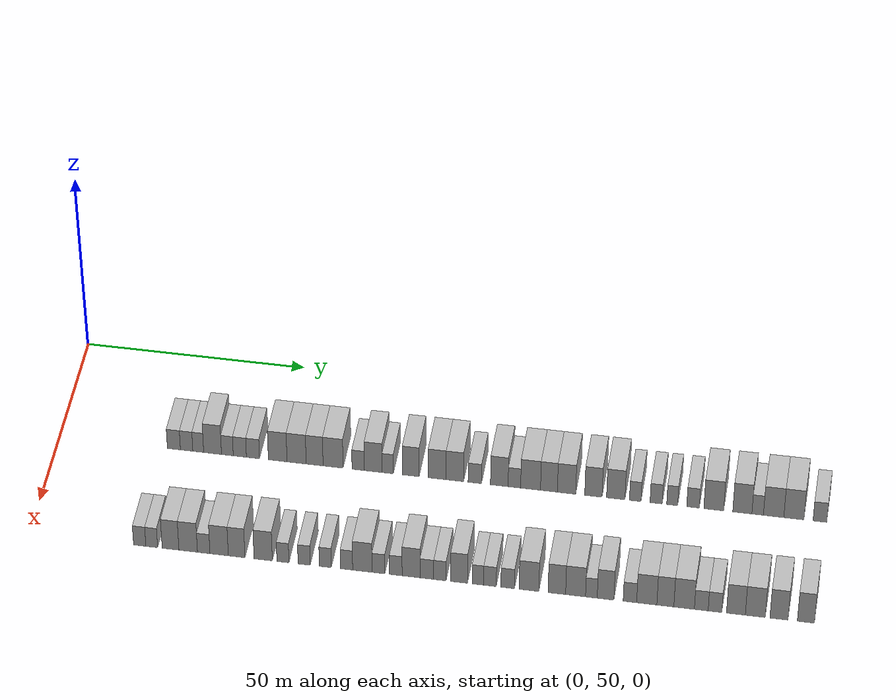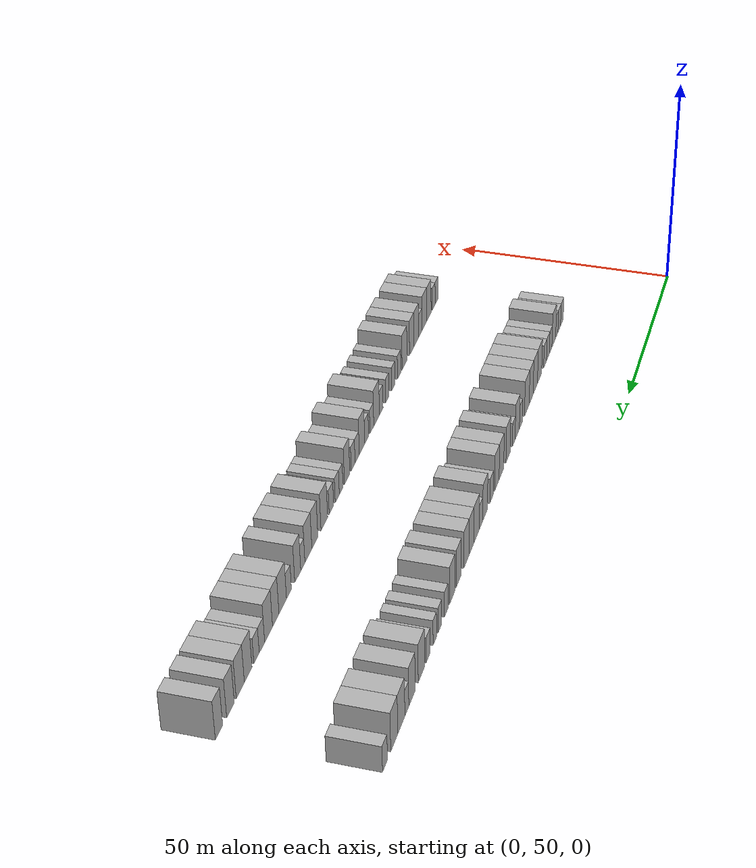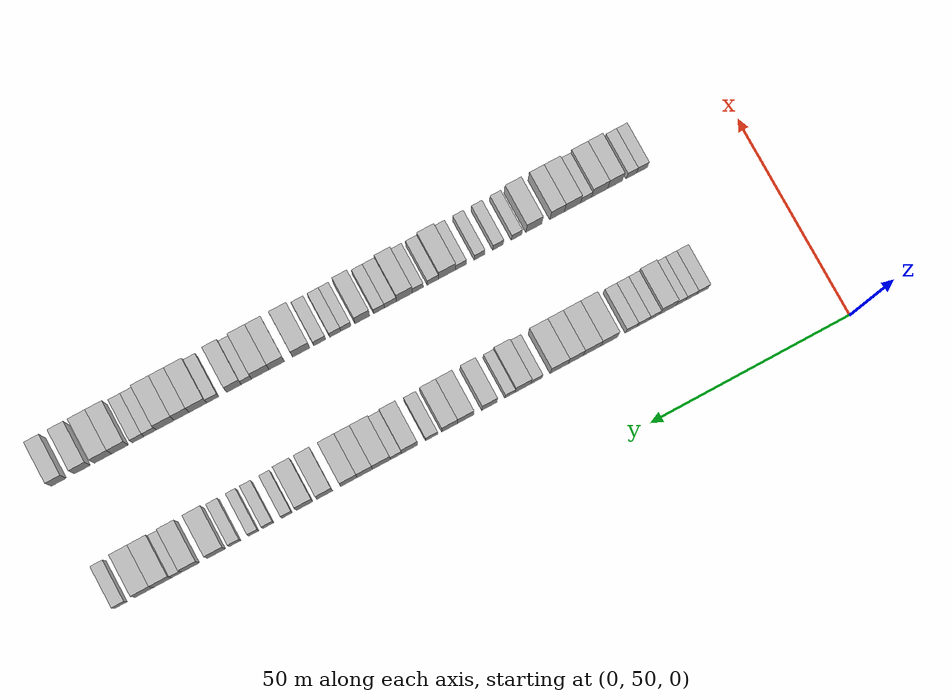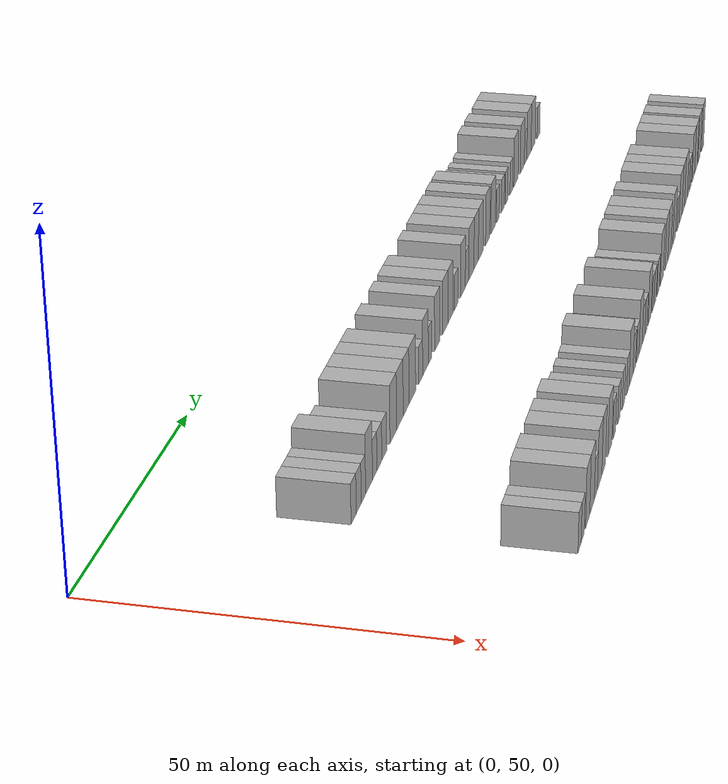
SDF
<sdf version="1.6">
 <world name="default">
  <model name="building_71">
   <static>1</static>
   <pose>25.0000 75.9434 0 0.000000 0.000000 0.000000</pose>
   <link name="link">
    <pose>0 0 3.00 0 0 0</pose>
    <collision name="collision"><geometry><box><size>10.0000 2.9512 6.0000</size></box></geometry></collision>
    <visual name="visual">
     <cast_shadows>0</cast_shadows>
     <geometry><box><size>10.0000 2.9512 6.0000</size></box></geometry>
     <material>
      <script>
       <uri>model://HANNAS_wall/materials/scripts</uri>
       <uri>model://HANNAS_wall/materials/textures</uri>
       <name>vrc/HANNAS_wall</name>
      </script>
     </material>
    </visual>
   </link>
  </model>
  <model name="building_72">
   <static>1</static>
   <pose>25.0000 78.8222 0 0.000000 0.000000 0.000000</pose>
   <link name="link">
    <pose>0 0 3.00 0 0 0</pose>
    <collision name="collision"><geometry><box><size>10.0000 2.8065 6.0000</size></box></geometry></collision>
    <visual name="visual">
     <cast_shadows>0</cast_shadows>
     <geometry><box><size>10.0000 2.8065 6.0000</size></box></geometry>
     <material>
      <script>
       <uri>model://HANNAS_wall/materials/scripts</uri>
       <uri>model://HANNAS_wall/materials/textures</uri>
       <name>vrc/HANNAS_wall</name>
      </script>
     </material>
    </visual>
   </link>
  </model>
  <model name="building_73">
   <static>1</static>
   <pose>25.0000 81.4517 0 0.000000 0.000000 0.000000</pose>
   <link name="link">
    <pose>0 0 3.00 0 0 0</pose>
    <collision name="collision"><geometry><box><size>10.0000 2.4524 6.0000</size></box></geometry></collision>
    <visual name="visual">
     <cast_shadows>0</cast_shadows>
     <geometry><box><size>10.0000 2.4524 6.0000</size></box></geometry>
     <material>
      <script>
       <uri>model://HANNAS_wall/materials/scripts</uri>
       <uri>model://HANNAS_wall/materials/textures</uri>
       <name>vrc/HANNAS_wall</name>
      </script>
     </material>
    </visual>
   </link>
  </model>
  <model name="building_74">
   <static>1</static>
   <pose>25.0000 84.6926 0 0.000000 0.000000 0.000000</pose>
   <link name="link">
    <pose>0 0 4.50 0 0 0</pose>
    <collision name="collision"><geometry><box><size>10.0000 4.0293 9.0000</size></box></geometry></collision>
    <visual name="visual">
     <cast_shadows>0</cast_shadows>
     <geometry><box><size>10.0000 4.0293 9.0000</size></box></geometry>
     <material>
      <script>
       <uri>model://HANNAS_wall/materials/scripts</uri>
       <uri>model://HANNAS_wall/materials/textures</uri>
       <name>vrc/HANNAS_wall</name>
      </script>
     </material>
    </visual>
   </link>
  </model>
  <model name="building_75">
   <static>1</static>
   <pose>25.0000 88.0367 0 0.000000 0.000000 0.000000</pose>
   <link name="link">
    <pose>0 0 3.00 0 0 0</pose>
    <collision name="collision"><geometry><box><size>10.0000 2.6588 6.0000</size></box></geometry></collision>
    <visual name="visual">
     <cast_shadows>0</cast_shadows>
     <geometry><box><size>10.0000 2.6588 6.0000</size></box></geometry>
     <material>
      <script>
       <uri>model://HANNAS_wall/materials/scripts</uri>
       <uri>model://HANNAS_wall/materials/textures</uri>
       <name>vrc/HANNAS_wall</name>
      </script>
     </material>
    </visual>
   </link>
  </model>
  <model name="building_76">
   <static>1</static>
   <pose>25.0000 90.8487 0 0.000000 0.000000 0.000000</pose>
   <link name="link">
    <pose>0 0 3.00 0 0 0</pose>
    <collision name="collision"><geometry><box><size>10.0000 2.9653 6.0000</size></box></geometry></collision>
    <visual name="visual">
     <cast_shadows>0</cast_shadows>
     <geometry><box><size>10.0000 2.9653 6.0000</size></box></geometry>
     <material>
      <script>
       <uri>model://HANNAS_wall/materials/scripts</uri>
       <uri>model://HANNAS_wall/materials/textures</uri>
       <name>vrc/HANNAS_wall</name>
      </script>
     </material>
    </visual>
   </link>
  </model>
  <model name="building_77">
   <static>1</static>
   <pose>25.0000 93.8080 0 0.000000 0.000000 0.000000</pose>
   <link name="link">
    <pose>0 0 3.00 0 0 0</pose>
    <collision name="collision"><geometry><box><size>10.0000 2.9532 6.0000</size></box></geometry></collision>
    <visual name="visual">
     <cast_shadows>0</cast_shadows>
     <geometry><box><size>10.0000 2.9532 6.0000</size></box></geometry>
     <material>
      <script>
       <uri>model://HANNAS_wall/materials/scripts</uri>
       <uri>model://HANNAS_wall/materials/textures</uri>
       <name>vrc/HANNAS_wall</name>
      </script>
     </material>
    </visual>
   </link>
  </model>
  <model name="building_78">
   <static>1</static>
   <pose>25.0000 99.3855 0 0.000000 0.000000 0.000000</pose>
   <link name="link">
    <pose>0 0 4.50 0 0 0</pose>
    <collision name="collision"><geometry><box><size>10.0000 4.2019 9.0000</size></box></geometry></collision>
    <visual name="visual">
     <cast_shadows>0</cast_shadows>
     <geometry><box><size>10.0000 4.2019 9.0000</size></box></geometry>
     <material>
      <script>
       <uri>model://HANNAS_wall/materials/scripts</uri>
       <uri>model://HANNAS_wall/materials/textures</uri>
       <name>vrc/HANNAS_wall</name>
      </script>
     </material>
    </visual>
   </link>
  </model>
  <model name="building_79">
   <static>1</static>
   <pose>25.0000 103.6359 0 0.000000 0.000000 0.000000</pose>
   <link name="link">
    <pose>0 0 4.50 0 0 0</pose>
    <collision name="collision"><geometry><box><size>10.0000 4.2987 9.0000</size></box></geometry></collision>
    <visual name="visual">
     <cast_shadows>0</cast_shadows>
     <geometry><box><size>10.0000 4.2987 9.0000</size></box></geometry>
     <material>
      <script>
       <uri>model://HANNAS_wall/materials/scripts</uri>
       <uri>model://HANNAS_wall/materials/textures</uri>
       <name>vrc/HANNAS_wall</name>
      </script>
     </material>
    </visual>
   </link>
  </model>
  <model name="building_80">
   <static>1</static>
   <pose>25.0000 107.6872 0 0.000000 0.000000 0.000000</pose>
   <link name="link">
    <pose>0 0 4.50 0 0 0</pose>
    <collision name="collision"><geometry><box><size>10.0000 3.8041 9.0000</size></box></geometry></collision>
    <visual name="visual">
     <cast_shadows>0</cast_shadows>
     <geometry><box><size>10.0000 3.8041 9.0000</size></box></geometry>
     <material>
      <script>
       <uri>model://HANNAS_wall/materials/scripts</uri>
       <uri>model://HANNAS_wall/materials/textures</uri>
       <name>vrc/HANNAS_wall</name>
      </script>
     </material>
    </visual>
   </link>
  </model>
  <model name="building_81">
   <static>1</static>
   <pose>25.0000 111.8363 0 0.000000 0.000000 0.000000</pose>
   <link name="link">
    <pose>0 0 4.50 0 0 0</pose>
    <collision name="collision"><geometry><box><size>10.0000 4.4941 9.0000</size></box></geometry></collision>
    <visual name="visual">
     <cast_shadows>0</cast_shadows>
     <geometry><box><size>10.0000 4.4941 9.0000</size></box></geometry>
     <material>
      <script>
       <uri>model://HANNAS_wall/materials/scripts</uri>
       <uri>model://HANNAS_wall/materials/textures</uri>
       <name>vrc/HANNAS_wall</name>
      </script>
     </material>
    </visual>
   </link>
  </model>
  <model name="building_82">
   <static>1</static>
   <pose>25.0000 117.4756 0 0.000000 0.000000 0.000000</pose>
   <link name="link">
    <pose>0 0 3.00 0 0 0</pose>
    <collision name="collision"><geometry><box><size>10.0000 2.7844 6.0000</size></box></geometry></collision>
    <visual name="visual">
     <cast_shadows>0</cast_shadows>
     <geometry><box><size>10.0000 2.7844 6.0000</size></box></geometry>
     <material>
      <script>
       <uri>model://HANNAS_wall/materials/scripts</uri>
       <uri>model://HANNAS_wall/materials/textures</uri>
       <name>vrc/HANNAS_wall</name>
      </script>
     </material>
    </visual>
   </link>
  </model>
  <model name="building_83">
   <static>1</static>
   <pose>25.0000 120.8584 0 0.000000 0.000000 0.000000</pose>
   <link name="link">
    <pose>0 0 4.50 0 0 0</pose>
    <collision name="collision"><geometry><box><size>10.0000 3.9813 9.0000</size></box></geometry></collision>
    <visual name="visual">
     <cast_shadows>0</cast_shadows>
     <geometry><box><size>10.0000 3.9813 9.0000</size></box></geometry>
     <material>
      <script>
       <uri>model://HANNAS_wall/materials/scripts</uri>
       <uri>model://HANNAS_wall/materials/textures</uri>
       <name>vrc/HANNAS_wall</name>
      </script>
     </material>
    </visual>
   </link>
  </model>
  <model name="building_84">
   <static>1</static>
   <pose>25.0000 124.0982 0 0.000000 0.000000 0.000000</pose>
   <link name="link">
    <pose>0 0 3.00 0 0 0</pose>
    <collision name="collision"><geometry><box><size>10.0000 2.4984 6.0000</size></box></geometry></collision>
    <visual name="visual">
     <cast_shadows>0</cast_shadows>
     <geometry><box><size>10.0000 2.4984 6.0000</size></box></geometry>
     <material>
      <script>
       <uri>model://HANNAS_wall/materials/scripts</uri>
       <uri>model://HANNAS_wall/materials/textures</uri>
       <name>vrc/HANNAS_wall</name>
      </script>
     </material>
    </visual>
   </link>
  </model>
  <model name="building_85">
   <static>1</static>
   <pose>25.0000 129.2277 0 0.000000 0.000000 0.000000</pose>
   <link name="link">
    <pose>0 0 4.50 0 0 0</pose>
    <collision name="collision"><geometry><box><size>10.0000 3.7606 9.0000</size></box></geometry></collision>
    <visual name="visual">
     <cast_shadows>0</cast_shadows>
     <geometry><box><size>10.0000 3.7606 9.0000</size></box></geometry>
     <material>
      <script>
       <uri>model://HANNAS_wall/materials/scripts</uri>
       <uri>model://HANNAS_wall/materials/textures</uri>
       <name>vrc/HANNAS_wall</name>
      </script>
     </material>
    </visual>
   </link>
  </model>
  <model name="building_86">
   <static>1</static>
   <pose>25.0000 135.1202 0 0.000000 0.000000 0.000000</pose>
   <link name="link">
    <pose>0 0 4.50 0 0 0</pose>
    <collision name="collision"><geometry><box><size>10.0000 4.0243 9.0000</size></box></geometry></collision>
    <visual name="visual">
     <cast_shadows>0</cast_shadows>
     <geometry><box><size>10.0000 4.0243 9.0000</size></box></geometry>
     <material>
      <script>
       <uri>model://HANNAS_wall/materials/scripts</uri>
       <uri>model://HANNAS_wall/materials/textures</uri>
       <name>vrc/HANNAS_wall</name>
      </script>
     </material>
    </visual>
   </link>
  </model>
  <model name="building_87">
   <static>1</static>
   <pose>25.0000 139.0828 0 0.000000 0.000000 0.000000</pose>
   <link name="link">
    <pose>0 0 4.50 0 0 0</pose>
    <collision name="collision"><geometry><box><size>10.0000 3.9010 9.0000</size></box></geometry></collision>
    <visual name="visual">
     <cast_shadows>0</cast_shadows>
     <geometry><box><size>10.0000 3.9010 9.0000</size></box></geometry>
     <material>
      <script>
       <uri>model://HANNAS_wall/materials/scripts</uri>
       <uri>model://HANNAS_wall/materials/textures</uri>
       <name>vrc/HANNAS_wall</name>
      </script>
     </material>
    </visual>
   </link>
  </model>
  <model name="building_88">
   <static>1</static>
   <pose>25.0000 143.5265 0 0.000000 0.000000 0.000000</pose>
   <link name="link">
    <pose>0 0 3.00 0 0 0</pose>
    <collision name="collision"><geometry><box><size>10.0000 2.9864 6.0000</size></box></geometry></collision>
    <visual name="visual">
     <cast_shadows>0</cast_shadows>
     <geometry><box><size>10.0000 2.9864 6.0000</size></box></geometry>
     <material>
      <script>
       <uri>model://HANNAS_wall/materials/scripts</uri>
       <uri>model://HANNAS_wall/materials/textures</uri>
       <name>vrc/HANNAS_wall</name>
      </script>
     </material>
    </visual>
   </link>
  </model>
  <model name="building_89">
   <static>1</static>
   <pose>25.0000 148.9827 0 0.000000 0.000000 0.000000</pose>
   <link name="link">
    <pose>0 0 4.50 0 0 0</pose>
    <collision name="collision"><geometry><box><size>10.0000 3.9260 9.0000</size></box></geometry></collision>
    <visual name="visual">
     <cast_shadows>0</cast_shadows>
     <geometry><box><size>10.0000 3.9260 9.0000</size></box></geometry>
     <material>
      <script>
       <uri>model://HANNAS_wall/materials/scripts</uri>
       <uri>model://HANNAS_wall/materials/textures</uri>
       <name>vrc/HANNAS_wall</name>
      </script>
     </material>
    </visual>
   </link>
  </model>
  <model name="building_90">
   <static>1</static>
   <pose>25.0000 152.3380 0 0.000000 0.000000 0.000000</pose>
   <link name="link">
    <pose>0 0 3.00 0 0 0</pose>
    <collision name="collision"><geometry><box><size>10.0000 2.7845 6.0000</size></box></geometry></collision>
    <visual name="visual">
     <cast_shadows>0</cast_shadows>
     <geometry><box><size>10.0000 2.7845 6.0000</size></box></geometry>
     <material>
      <script>
       <uri>model://HANNAS_wall/materials/scripts</uri>
       <uri>model://HANNAS_wall/materials/textures</uri>
       <name>vrc/HANNAS_wall</name>
      </script>
     </material>
    </visual>
   </link>
  </model>
  <model name="building_91">
   <static>1</static>
   <pose>25.0000 155.9363 0 0.000000 0.000000 0.000000</pose>
   <link name="link">
    <pose>0 0 4.50 0 0 0</pose>
    <collision name="collision"><geometry><box><size>10.0000 4.4121 9.0000</size></box></geometry></collision>
    <visual name="visual">
     <cast_shadows>0</cast_shadows>
     <geometry><box><size>10.0000 4.4121 9.0000</size></box></geometry>
     <material>
      <script>
       <uri>model://HANNAS_wall/materials/scripts</uri>
       <uri>model://HANNAS_wall/materials/textures</uri>
       <name>vrc/HANNAS_wall</name>
      </script>
     </material>
    </visual>
   </link>
  </model>
  <model name="building_92">
   <static>1</static>
   <pose>25.0000 160.0136 0 0.000000 0.000000 0.000000</pose>
   <link name="link">
    <pose>0 0 4.50 0 0 0</pose>
    <collision name="collision"><geometry><box><size>10.0000 3.7425 9.0000</size></box></geometry></collision>
    <visual name="visual">
     <cast_shadows>0</cast_shadows>
     <geometry><box><size>10.0000 3.7425 9.0000</size></box></geometry>
     <material>
      <script>
       <uri>model://HANNAS_wall/materials/scripts</uri>
       <uri>model://HANNAS_wall/materials/textures</uri>
       <name>vrc/HANNAS_wall</name>
      </script>
     </material>
    </visual>
   </link>
  </model>
  <model name="building_93">
   <static>1</static>
   <pose>25.0000 163.9156 0 0.000000 0.000000 0.000000</pose>
   <link name="link">
    <pose>0 0 4.50 0 0 0</pose>
    <collision name="collision"><geometry><box><size>10.0000 4.0614 9.0000</size></box></geometry></collision>
    <visual name="visual">
     <cast_shadows>0</cast_shadows>
     <geometry><box><size>10.0000 4.0614 9.0000</size></box></geometry>
     <material>
      <script>
       <uri>model://HANNAS_wall/materials/scripts</uri>
       <uri>model://HANNAS_wall/materials/textures</uri>
       <name>vrc/HANNAS_wall</name>
      </script>
     </material>
    </visual>
   </link>
  </model>
  <model name="building_94">
   <static>1</static>
   <pose>25.0000 169.8622 0 0.000000 0.000000 0.000000</pose>
   <link name="link">
    <pose>0 0 4.50 0 0 0</pose>
    <collision name="collision"><geometry><box><size>10.0000 3.8318 9.0000</size></box></geometry></collision>
    <visual name="visual">
     <cast_shadows>0</cast_shadows>
     <geometry><box><size>10.0000 3.8318 9.0000</size></box></geometry>
     <material>
      <script>
       <uri>model://HANNAS_wall/materials/scripts</uri>
       <uri>model://HANNAS_wall/materials/textures</uri>
       <name>vrc/HANNAS_wall</name>
      </script>
     </material>
    </visual>
   </link>
  </model>
  <model name="building_95">
   <static>1</static>
   <pose>25.0000 174.8088 0 0.000000 0.000000 0.000000</pose>
   <link name="link">
    <pose>0 0 4.50 0 0 0</pose>
    <collision name="collision"><geometry><box><size>10.0000 4.0614 9.0000</size></box></geometry></collision>
    <visual name="visual">
     <cast_shadows>0</cast_shadows>
     <geometry><box><size>10.0000 4.0614 9.0000</size></box></geometry>
     <material>
      <script>
       <uri>model://HANNAS_wall/materials/scripts</uri>
       <uri>model://HANNAS_wall/materials/textures</uri>
       <name>vrc/HANNAS_wall</name>
      </script>
     </material>
    </visual>
   </link>
  </model>
  <model name="building_96">
   <static>1</static>
   <pose>25.0000 179.1138 0 0.000000 0.000000 0.000000</pose>
   <link name="link">
    <pose>0 0 3.00 0 0 0</pose>
    <collision name="collision"><geometry><box><size>10.0000 2.5486 6.0000</size></box></geometry></collision>
    <visual name="visual">
     <cast_shadows>0</cast_shadows>
     <geometry><box><size>10.0000 2.5486 6.0000</size></box></geometry>
     <material>
      <script>
       <uri>model://HANNAS_wall/materials/scripts</uri>
       <uri>model://HANNAS_wall/materials/textures</uri>
       <name>vrc/HANNAS_wall</name>
      </script>
     </material>
    </visual>
   </link>
  </model>
  <model name="building_97">
   <static>1</static>
   <pose>25.0000 183.7272 0 0.000000 0.000000 0.000000</pose>
   <link name="link">
    <pose>0 0 3.00 0 0 0</pose>
    <collision name="collision"><geometry><box><size>10.0000 2.6782 6.0000</size></box></geometry></collision>
    <visual name="visual">
     <cast_shadows>0</cast_shadows>
     <geometry><box><size>10.0000 2.6782 6.0000</size></box></geometry>
     <material>
      <script>
       <uri>model://HANNAS_wall/materials/scripts</uri>
       <uri>model://HANNAS_wall/materials/textures</uri>
       <name>vrc/HANNAS_wall</name>
      </script>
     </material>
    </visual>
   </link>
  </model>
  <model name="building_98">
   <static>1</static>
   <pose>25.0000 187.2731 0 0.000000 0.000000 0.000000</pose>
   <link name="link">
    <pose>0 0 3.00 0 0 0</pose>
    <collision name="collision"><geometry><box><size>10.0000 2.4135 6.0000</size></box></geometry></collision>
    <visual name="visual">
     <cast_shadows>0</cast_shadows>
     <geometry><box><size>10.0000 2.4135 6.0000</size></box></geometry>
     <material>
      <script>
       <uri>model://HANNAS_wall/materials/scripts</uri>
       <uri>model://HANNAS_wall/materials/textures</uri>
       <name>vrc/HANNAS_wall</name>
      </script>
     </material>
    </visual>
   </link>
  </model>
  <model name="building_99">
   <static>1</static>
   <pose>25.0000 191.8620 0 0.000000 0.000000 0.000000</pose>
   <link name="link">
    <pose>0 0 3.00 0 0 0</pose>
    <collision name="collision"><geometry><box><size>10.0000 2.7644 6.0000</size></box></geometry></collision>
    <visual name="visual">
     <cast_shadows>0</cast_shadows>
     <geometry><box><size>10.0000 2.7644 6.0000</size></box></geometry>
     <material>
      <script>
       <uri>model://HANNAS_wall/materials/scripts</uri>
       <uri>model://HANNAS_wall/materials/textures</uri>
       <name>vrc/HANNAS_wall</name>
      </script>
     </material>
    </visual>
   </link>
  </model>
  <model name="building_100">
   <static>1</static>
   <pose>25.0000 196.4254 0 0.000000 0.000000 0.000000</pose>
   <link name="link">
    <pose>0 0 4.50 0 0 0</pose>
    <collision name="collision"><geometry><box><size>10.0000 4.3623 9.0000</size></box></geometry></collision>
    <visual name="visual">
     <cast_shadows>0</cast_shadows>
     <geometry><box><size>10.0000 4.3623 9.0000</size></box></geometry>
     <material>
      <script>
       <uri>model://HANNAS_wall/materials/scripts</uri>
       <uri>model://HANNAS_wall/materials/textures</uri>
       <name>vrc/HANNAS_wall</name>
      </script>
     </material>
    </visual>
   </link>
  </model>
  <model name="building_101">
   <static>1</static>
   <pose>25.0000 202.7082 0 0.000000 0.000000 0.000000</pose>
   <link name="link">
    <pose>0 0 4.50 0 0 0</pose>
    <collision name="collision"><geometry><box><size>10.0000 4.2033 9.0000</size></box></geometry></collision>
    <visual name="visual">
     <cast_shadows>0</cast_shadows>
     <geometry><box><size>10.0000 4.2033 9.0000</size></box></geometry>
     <material>
      <script>
       <uri>model://HANNAS_wall/materials/scripts</uri>
       <uri>model://HANNAS_wall/materials/textures</uri>
       <name>vrc/HANNAS_wall</name>
      </script>
     </material>
    </visual>
   </link>
  </model>
  <model name="building_102">
   <static>1</static>
   <pose>25.0000 206.0716 0 0.000000 0.000000 0.000000</pose>
   <link name="link">
    <pose>0 0 3.00 0 0 0</pose>
    <collision name="collision"><geometry><box><size>10.0000 2.5236 6.0000</size></box></geometry></collision>
    <visual name="visual">
     <cast_shadows>0</cast_shadows>
     <geometry><box><size>10.0000 2.5236 6.0000</size></box></geometry>
     <material>
      <script>
       <uri>model://HANNAS_wall/materials/scripts</uri>
       <uri>model://HANNAS_wall/materials/textures</uri>
       <name>vrc/HANNAS_wall</name>
      </script>
     </material>
    </visual>
   </link>
  </model>
  <model name="building_103">
   <static>1</static>
   <pose>25.0000 209.5708 0 0.000000 0.000000 0.000000</pose>
   <link name="link">
    <pose>0 0 4.50 0 0 0</pose>
    <collision name="collision"><geometry><box><size>10.0000 4.4748 9.0000</size></box></geometry></collision>
    <visual name="visual">
     <cast_shadows>0</cast_shadows>
     <geometry><box><size>10.0000 4.4748 9.0000</size></box></geometry>
     <material>
      <script>
       <uri>model://HANNAS_wall/materials/scripts</uri>
       <uri>model://HANNAS_wall/materials/textures</uri>
       <name>vrc/HANNAS_wall</name>
      </script>
     </material>
    </visual>
   </link>
  </model>
  <model name="building_104">
   <static>1</static>
   <pose>25.0000 214.0090 0 0.000000 0.000000 0.000000</pose>
   <link name="link">
    <pose>0 0 4.50 0 0 0</pose>
    <collision name="collision"><geometry><box><size>10.0000 4.4015 9.0000</size></box></geometry></collision>
    <visual name="visual">
     <cast_shadows>0</cast_shadows>
     <geometry><box><size>10.0000 4.4015 9.0000</size></box></geometry>
     <material>
      <script>
       <uri>model://HANNAS_wall/materials/scripts</uri>
       <uri>model://HANNAS_wall/materials/textures</uri>
       <name>vrc/HANNAS_wall</name>
      </script>
     </material>
    </visual>
   </link>
  </model>
  <model name="building_105">
   <static>1</static>
   <pose>25.0000 219.7076 0 0.000000 0.000000 0.000000</pose>
   <link name="link">
    <pose>0 0 3.00 0 0 0</pose>
    <collision name="collision"><geometry><box><size>10.0000 2.9957 6.0000</size></box></geometry></collision>
    <visual name="visual">
     <cast_shadows>0</cast_shadows>
     <geometry><box><size>10.0000 2.9957 6.0000</size></box></geometry>
     <material>
      <script>
       <uri>model://HANNAS_wall/materials/scripts</uri>
       <uri>model://HANNAS_wall/materials/textures</uri>
       <name>vrc/HANNAS_wall</name>
      </script>
     </material>
    </visual>
   </link>
  </model>
  <model name="building_178">
   <static>1</static>
   <pose>55.0000 74.4516 0 0.000000 0.000000 0.000000</pose>
   <link name="link">
    <pose>0 0 3.00 0 0 0</pose>
    <collision name="collision"><geometry><box><size>10.0000 2.7142 6.0000</size></box></geometry></collision>
    <visual name="visual">
     <cast_shadows>0</cast_shadows>
     <geometry><box><size>10.0000 2.7142 6.0000</size></box></geometry>
     <material>
      <script>
       <uri>model://HANNAS_wall/materials/scripts</uri>
       <uri>model://HANNAS_wall/materials/textures</uri>
       <name>vrc/HANNAS_wall</name>
      </script>
     </material>
    </visual>
   </link>
  </model>
  <model name="building_179">
   <static>1</static>
   <pose>55.0000 77.1133 0 0.000000 0.000000 0.000000</pose>
   <link name="link">
    <pose>0 0 3.00 0 0 0</pose>
    <collision name="collision"><geometry><box><size>10.0000 2.6094 6.0000</size></box></geometry></collision>
    <visual name="visual">
     <cast_shadows>0</cast_shadows>
     <geometry><box><size>10.0000 2.6094 6.0000</size></box></geometry>
     <material>
      <script>
       <uri>model://HANNAS_wall/materials/scripts</uri>
       <uri>model://HANNAS_wall/materials/textures</uri>
       <name>vrc/HANNAS_wall</name>
      </script>
     </material>
    </visual>
   </link>
  </model>
  <model name="building_180">
   <static>1</static>
   <pose>55.0000 81.2710 0 0.000000 0.000000 0.000000</pose>
   <link name="link">
    <pose>0 0 4.50 0 0 0</pose>
    <collision name="collision"><geometry><box><size>10.0000 3.7060 9.0000</size></box></geometry></collision>
    <visual name="visual">
     <cast_shadows>0</cast_shadows>
     <geometry><box><size>10.0000 3.7060 9.0000</size></box></geometry>
     <material>
      <script>
       <uri>model://HANNAS_wall/materials/scripts</uri>
       <uri>model://HANNAS_wall/materials/textures</uri>
       <name>vrc/HANNAS_wall</name>
      </script>
     </material>
    </visual>
   </link>
  </model>
  <model name="building_181">
   <static>1</static>
   <pose>55.0000 85.1702 0 0.000000 0.000000 0.000000</pose>
   <link name="link">
    <pose>0 0 4.50 0 0 0</pose>
    <collision name="collision"><geometry><box><size>10.0000 4.0924 9.0000</size></box></geometry></collision>
    <visual name="visual">
     <cast_shadows>0</cast_shadows>
     <geometry><box><size>10.0000 4.0924 9.0000</size></box></geometry>
     <material>
      <script>
       <uri>model://HANNAS_wall/materials/scripts</uri>
       <uri>model://HANNAS_wall/materials/textures</uri>
       <name>vrc/HANNAS_wall</name>
      </script>
     </material>
    </visual>
   </link>
  </model>
  <model name="building_182">
   <static>1</static>
   <pose>55.0000 88.5959 0 0.000000 0.000000 0.000000</pose>
   <link name="link">
    <pose>0 0 3.00 0 0 0</pose>
    <collision name="collision"><geometry><box><size>10.0000 2.7591 6.0000</size></box></geometry></collision>
    <visual name="visual">
     <cast_shadows>0</cast_shadows>
     <geometry><box><size>10.0000 2.7591 6.0000</size></box></geometry>
     <material>
      <script>
       <uri>model://HANNAS_wall/materials/scripts</uri>
       <uri>model://HANNAS_wall/materials/textures</uri>
       <name>vrc/HANNAS_wall</name>
      </script>
     </material>
    </visual>
   </link>
  </model>
  <model name="building_183">
   <static>1</static>
   <pose>55.0000 92.0030 0 0.000000 0.000000 0.000000</pose>
   <link name="link">
    <pose>0 0 4.50 0 0 0</pose>
    <collision name="collision"><geometry><box><size>10.0000 4.0550 9.0000</size></box></geometry></collision>
    <visual name="visual">
     <cast_shadows>0</cast_shadows>
     <geometry><box><size>10.0000 4.0550 9.0000</size></box></geometry>
     <material>
      <script>
       <uri>model://HANNAS_wall/materials/scripts</uri>
       <uri>model://HANNAS_wall/materials/textures</uri>
       <name>vrc/HANNAS_wall</name>
      </script>
     </material>
    </visual>
   </link>
  </model>
  <model name="building_184">
   <static>1</static>
   <pose>55.0000 95.8622 0 0.000000 0.000000 0.000000</pose>
   <link name="link">
    <pose>0 0 4.50 0 0 0</pose>
    <collision name="collision"><geometry><box><size>10.0000 3.6633 9.0000</size></box></geometry></collision>
    <visual name="visual">
     <cast_shadows>0</cast_shadows>
     <geometry><box><size>10.0000 3.6633 9.0000</size></box></geometry>
     <material>
      <script>
       <uri>model://HANNAS_wall/materials/scripts</uri>
       <uri>model://HANNAS_wall/materials/textures</uri>
       <name>vrc/HANNAS_wall</name>
      </script>
     </material>
    </visual>
   </link>
  </model>
  <model name="building_185">
   <static>1</static>
   <pose>55.0000 101.7070 0 0.000000 0.000000 0.000000</pose>
   <link name="link">
    <pose>0 0 4.50 0 0 0</pose>
    <collision name="collision"><geometry><box><size>10.0000 4.0263 9.0000</size></box></geometry></collision>
    <visual name="visual">
     <cast_shadows>0</cast_shadows>
     <geometry><box><size>10.0000 4.0263 9.0000</size></box></geometry>
     <material>
      <script>
       <uri>model://HANNAS_wall/materials/scripts</uri>
       <uri>model://HANNAS_wall/materials/textures</uri>
       <name>vrc/HANNAS_wall</name>
      </script>
     </material>
    </visual>
   </link>
  </model>
  <model name="building_186">
   <static>1</static>
   <pose>55.0000 106.0447 0 0.000000 0.000000 0.000000</pose>
   <link name="link">
    <pose>0 0 3.00 0 0 0</pose>
    <collision name="collision"><geometry><box><size>10.0000 2.6491 6.0000</size></box></geometry></collision>
    <visual name="visual">
     <cast_shadows>0</cast_shadows>
     <geometry><box><size>10.0000 2.6491 6.0000</size></box></geometry>
     <material>
      <script>
       <uri>model://HANNAS_wall/materials/scripts</uri>
       <uri>model://HANNAS_wall/materials/textures</uri>
       <name>vrc/HANNAS_wall</name>
      </script>
     </material>
    </visual>
   </link>
  </model>
  <model name="building_187">
   <static>1</static>
   <pose>55.0000 110.7025 0 0.000000 0.000000 0.000000</pose>
   <link name="link">
    <pose>0 0 3.00 0 0 0</pose>
    <collision name="collision"><geometry><box><size>10.0000 2.6667 6.0000</size></box></geometry></collision>
    <visual name="visual">
     <cast_shadows>0</cast_shadows>
     <geometry><box><size>10.0000 2.6667 6.0000</size></box></geometry>
     <material>
      <script>
       <uri>model://HANNAS_wall/materials/scripts</uri>
       <uri>model://HANNAS_wall/materials/textures</uri>
       <name>vrc/HANNAS_wall</name>
      </script>
     </material>
    </visual>
   </link>
  </model>
  <model name="building_188">
   <static>1</static>
   <pose>55.0000 115.3500 0 0.000000 0.000000 0.000000</pose>
   <link name="link">
    <pose>0 0 3.00 0 0 0</pose>
    <collision name="collision"><geometry><box><size>10.0000 2.6282 6.0000</size></box></geometry></collision>
    <visual name="visual">
     <cast_shadows>0</cast_shadows>
     <geometry><box><size>10.0000 2.6282 6.0000</size></box></geometry>
     <material>
      <script>
       <uri>model://HANNAS_wall/materials/scripts</uri>
       <uri>model://HANNAS_wall/materials/textures</uri>
       <name>vrc/HANNAS_wall</name>
      </script>
     </material>
    </visual>
   </link>
  </model>
  <model name="building_189">
   <static>1</static>
   <pose>55.0000 120.0042 0 0.000000 0.000000 0.000000</pose>
   <link name="link">
    <pose>0 0 3.00 0 0 0</pose>
    <collision name="collision"><geometry><box><size>10.0000 2.6802 6.0000</size></box></geometry></collision>
    <visual name="visual">
     <cast_shadows>0</cast_shadows>
     <geometry><box><size>10.0000 2.6802 6.0000</size></box></geometry>
     <material>
      <script>
       <uri>model://HANNAS_wall/materials/scripts</uri>
       <uri>model://HANNAS_wall/materials/textures</uri>
       <name>vrc/HANNAS_wall</name>
      </script>
     </material>
    </visual>
   </link>
  </model>
  <model name="building_190">
   <static>1</static>
   <pose>55.0000 123.4633 0 0.000000 0.000000 0.000000</pose>
   <link name="link">
    <pose>0 0 4.50 0 0 0</pose>
    <collision name="collision"><geometry><box><size>10.0000 4.2381 9.0000</size></box></geometry></collision>
    <visual name="visual">
     <cast_shadows>0</cast_shadows>
     <geometry><box><size>10.0000 4.2381 9.0000</size></box></geometry>
     <material>
      <script>
       <uri>model://HANNAS_wall/materials/scripts</uri>
       <uri>model://HANNAS_wall/materials/textures</uri>
       <name>vrc/HANNAS_wall</name>
      </script>
     </material>
    </visual>
   </link>
  </model>
  <model name="building_191">
   <static>1</static>
   <pose>55.0000 126.9871 0 0.000000 0.000000 0.000000</pose>
   <link name="link">
    <pose>0 0 3.00 0 0 0</pose>
    <collision name="collision"><geometry><box><size>10.0000 2.8095 6.0000</size></box></geometry></collision>
    <visual name="visual">
     <cast_shadows>0</cast_shadows>
     <geometry><box><size>10.0000 2.8095 6.0000</size></box></geometry>
     <material>
      <script>
       <uri>model://HANNAS_wall/materials/scripts</uri>
       <uri>model://HANNAS_wall/materials/textures</uri>
       <name>vrc/HANNAS_wall</name>
      </script>
     </material>
    </visual>
   </link>
  </model>
  <model name="building_192">
   <static>1</static>
   <pose>55.0000 130.7754 0 0.000000 0.000000 0.000000</pose>
   <link name="link">
    <pose>0 0 3.00 0 0 0</pose>
    <collision name="collision"><geometry><box><size>10.0000 2.7670 6.0000</size></box></geometry></collision>
    <visual name="visual">
     <cast_shadows>0</cast_shadows>
     <geometry><box><size>10.0000 2.7670 6.0000</size></box></geometry>
     <material>
      <script>
       <uri>model://HANNAS_wall/materials/scripts</uri>
       <uri>model://HANNAS_wall/materials/textures</uri>
       <name>vrc/HANNAS_wall</name>
      </script>
     </material>
    </visual>
   </link>
  </model>
  <model name="building_193">
   <static>1</static>
   <pose>55.0000 134.1087 0 0.000000 0.000000 0.000000</pose>
   <link name="link">
    <pose>0 0 4.50 0 0 0</pose>
    <collision name="collision"><geometry><box><size>10.0000 3.8997 9.0000</size></box></geometry></collision>
    <visual name="visual">
     <cast_shadows>0</cast_shadows>
     <geometry><box><size>10.0000 3.8997 9.0000</size></box></geometry>
     <material>
      <script>
       <uri>model://HANNAS_wall/materials/scripts</uri>
       <uri>model://HANNAS_wall/materials/textures</uri>
       <name>vrc/HANNAS_wall</name>
      </script>
     </material>
    </visual>
   </link>
  </model>
  <model name="building_194">
   <static>1</static>
   <pose>55.0000 137.5579 0 0.000000 0.000000 0.000000</pose>
   <link name="link">
    <pose>0 0 3.00 0 0 0</pose>
    <collision name="collision"><geometry><box><size>10.0000 2.9987 6.0000</size></box></geometry></collision>
    <visual name="visual">
     <cast_shadows>0</cast_shadows>
     <geometry><box><size>10.0000 2.9987 6.0000</size></box></geometry>
     <material>
      <script>
       <uri>model://HANNAS_wall/materials/scripts</uri>
       <uri>model://HANNAS_wall/materials/textures</uri>
       <name>vrc/HANNAS_wall</name>
      </script>
     </material>
    </visual>
   </link>
  </model>
  <model name="building_195">
   <static>1</static>
   <pose>55.0000 140.4032 0 0.000000 0.000000 0.000000</pose>
   <link name="link">
    <pose>0 0 3.00 0 0 0</pose>
    <collision name="collision"><geometry><box><size>10.0000 2.6919 6.0000</size></box></geometry></collision>
    <visual name="visual">
     <cast_shadows>0</cast_shadows>
     <geometry><box><size>10.0000 2.6919 6.0000</size></box></geometry>
     <material>
      <script>
       <uri>model://HANNAS_wall/materials/scripts</uri>
       <uri>model://HANNAS_wall/materials/textures</uri>
       <name>vrc/HANNAS_wall</name>
      </script>
     </material>
    </visual>
   </link>
  </model>
  <model name="building_196">
   <static>1</static>
   <pose>55.0000 144.5765 0 0.000000 0.000000 0.000000</pose>
   <link name="link">
    <pose>0 0 4.50 0 0 0</pose>
    <collision name="collision"><geometry><box><size>10.0000 3.6547 9.0000</size></box></geometry></collision>
    <visual name="visual">
     <cast_shadows>0</cast_shadows>
     <geometry><box><size>10.0000 3.6547 9.0000</size></box></geometry>
     <material>
      <script>
       <uri>model://HANNAS_wall/materials/scripts</uri>
       <uri>model://HANNAS_wall/materials/textures</uri>
       <name>vrc/HANNAS_wall</name>
      </script>
     </material>
    </visual>
   </link>
  </model>
  <model name="building_197">
   <static>1</static>
   <pose>55.0000 148.6524 0 0.000000 0.000000 0.000000</pose>
   <link name="link">
    <pose>0 0 3.00 0 0 0</pose>
    <collision name="collision"><geometry><box><size>10.0000 2.4972 6.0000</size></box></geometry></collision>
    <visual name="visual">
     <cast_shadows>0</cast_shadows>
     <geometry><box><size>10.0000 2.4972 6.0000</size></box></geometry>
     <material>
      <script>
       <uri>model://HANNAS_wall/materials/scripts</uri>
       <uri>model://HANNAS_wall/materials/textures</uri>
       <name>vrc/HANNAS_wall</name>
      </script>
     </material>
    </visual>
   </link>
  </model>
  <model name="building_198">
   <static>1</static>
   <pose>55.0000 151.2826 0 0.000000 0.000000 0.000000</pose>
   <link name="link">
    <pose>0 0 3.00 0 0 0</pose>
    <collision name="collision"><geometry><box><size>10.0000 2.7633 6.0000</size></box></geometry></collision>
    <visual name="visual">
     <cast_shadows>0</cast_shadows>
     <geometry><box><size>10.0000 2.7633 6.0000</size></box></geometry>
     <material>
      <script>
       <uri>model://HANNAS_wall/materials/scripts</uri>
       <uri>model://HANNAS_wall/materials/textures</uri>
       <name>vrc/HANNAS_wall</name>
      </script>
     </material>
    </visual>
   </link>
  </model>
  <model name="building_199">
   <static>1</static>
   <pose>55.0000 155.1439 0 0.000000 0.000000 0.000000</pose>
   <link name="link">
    <pose>0 0 3.00 0 0 0</pose>
    <collision name="collision"><geometry><box><size>10.0000 2.9593 6.0000</size></box></geometry></collision>
    <visual name="visual">
     <cast_shadows>0</cast_shadows>
     <geometry><box><size>10.0000 2.9593 6.0000</size></box></geometry>
     <material>
      <script>
       <uri>model://HANNAS_wall/materials/scripts</uri>
       <uri>model://HANNAS_wall/materials/textures</uri>
       <name>vrc/HANNAS_wall</name>
      </script>
     </material>
    </visual>
   </link>
  </model>
  <model name="building_200">
   <static>1</static>
   <pose>55.0000 159.7651 0 0.000000 0.000000 0.000000</pose>
   <link name="link">
    <pose>0 0 4.50 0 0 0</pose>
    <collision name="collision"><geometry><box><size>10.0000 4.2829 9.0000</size></box></geometry></collision>
    <visual name="visual">
     <cast_shadows>0</cast_shadows>
     <geometry><box><size>10.0000 4.2829 9.0000</size></box></geometry>
     <material>
      <script>
       <uri>model://HANNAS_wall/materials/scripts</uri>
       <uri>model://HANNAS_wall/materials/textures</uri>
       <name>vrc/HANNAS_wall</name>
      </script>
     </material>
    </visual>
   </link>
  </model>
  <model name="building_201">
   <static>1</static>
   <pose>55.0000 165.8039 0 0.000000 0.000000 0.000000</pose>
   <link name="link">
    <pose>0 0 4.50 0 0 0</pose>
    <collision name="collision"><geometry><box><size>10.0000 3.7947 9.0000</size></box></geometry></collision>
    <visual name="visual">
     <cast_shadows>0</cast_shadows>
     <geometry><box><size>10.0000 3.7947 9.0000</size></box></geometry>
     <material>
      <script>
       <uri>model://HANNAS_wall/materials/scripts</uri>
       <uri>model://HANNAS_wall/materials/textures</uri>
       <name>vrc/HANNAS_wall</name>
      </script>
     </material>
    </visual>
   </link>
  </model>
  <model name="building_202">
   <static>1</static>
   <pose>55.0000 169.8544 0 0.000000 0.000000 0.000000</pose>
   <link name="link">
    <pose>0 0 4.50 0 0 0</pose>
    <collision name="collision"><geometry><box><size>10.0000 4.3062 9.0000</size></box></geometry></collision>
    <visual name="visual">
     <cast_shadows>0</cast_shadows>
     <geometry><box><size>10.0000 4.3062 9.0000</size></box></geometry>
     <material>
      <script>
       <uri>model://HANNAS_wall/materials/scripts</uri>
       <uri>model://HANNAS_wall/materials/textures</uri>
       <name>vrc/HANNAS_wall</name>
      </script>
     </material>
    </visual>
   </link>
  </model>
  <model name="building_203">
   <static>1</static>
   <pose>55.0000 173.2685 0 0.000000 0.000000 0.000000</pose>
   <link name="link">
    <pose>0 0 3.00 0 0 0</pose>
    <collision name="collision"><geometry><box><size>10.0000 2.5220 6.0000</size></box></geometry></collision>
    <visual name="visual">
     <cast_shadows>0</cast_shadows>
     <geometry><box><size>10.0000 2.5220 6.0000</size></box></geometry>
     <material>
      <script>
       <uri>model://HANNAS_wall/materials/scripts</uri>
       <uri>model://HANNAS_wall/materials/textures</uri>
       <name>vrc/HANNAS_wall</name>
      </script>
     </material>
    </visual>
   </link>
  </model>
  <model name="building_204">
   <static>1</static>
   <pose>55.0000 176.3341 0 0.000000 0.000000 0.000000</pose>
   <link name="link">
    <pose>0 0 4.50 0 0 0</pose>
    <collision name="collision"><geometry><box><size>10.0000 3.6091 9.0000</size></box></geometry></collision>
    <visual name="visual">
     <cast_shadows>0</cast_shadows>
     <geometry><box><size>10.0000 3.6091 9.0000</size></box></geometry>
     <material>
      <script>
       <uri>model://HANNAS_wall/materials/scripts</uri>
       <uri>model://HANNAS_wall/materials/textures</uri>
       <name>vrc/HANNAS_wall</name>
      </script>
     </material>
    </visual>
   </link>
  </model>
  <model name="building_205">
   <static>1</static>
   <pose>55.0000 181.5926 0 0.000000 0.000000 0.000000</pose>
   <link name="link">
    <pose>0 0 3.00 0 0 0</pose>
    <collision name="collision"><geometry><box><size>10.0000 2.9080 6.0000</size></box></geometry></collision>
    <visual name="visual">
     <cast_shadows>0</cast_shadows>
     <geometry><box><size>10.0000 2.9080 6.0000</size></box></geometry>
     <material>
      <script>
       <uri>model://HANNAS_wall/materials/scripts</uri>
       <uri>model://HANNAS_wall/materials/textures</uri>
       <name>vrc/HANNAS_wall</name>
      </script>
     </material>
    </visual>
   </link>
  </model>
  <model name="building_206">
   <static>1</static>
   <pose>55.0000 185.2253 0 0.000000 0.000000 0.000000</pose>
   <link name="link">
    <pose>0 0 4.50 0 0 0</pose>
    <collision name="collision"><geometry><box><size>10.0000 4.3573 9.0000</size></box></geometry></collision>
    <visual name="visual">
     <cast_shadows>0</cast_shadows>
     <geometry><box><size>10.0000 4.3573 9.0000</size></box></geometry>
     <material>
      <script>
       <uri>model://HANNAS_wall/materials/scripts</uri>
       <uri>model://HANNAS_wall/materials/textures</uri>
       <name>vrc/HANNAS_wall</name>
      </script>
     </material>
    </visual>
   </link>
  </model>
  <model name="building_207">
   <static>1</static>
   <pose>55.0000 189.2351 0 0.000000 0.000000 0.000000</pose>
   <link name="link">
    <pose>0 0 4.50 0 0 0</pose>
    <collision name="collision"><geometry><box><size>10.0000 3.6623 9.0000</size></box></geometry></collision>
    <visual name="visual">
     <cast_shadows>0</cast_shadows>
     <geometry><box><size>10.0000 3.6623 9.0000</size></box></geometry>
     <material>
      <script>
       <uri>model://HANNAS_wall/materials/scripts</uri>
       <uri>model://HANNAS_wall/materials/textures</uri>
       <name>vrc/HANNAS_wall</name>
      </script>
     </material>
    </visual>
   </link>
  </model>
  <model name="building_208">
   <static>1</static>
   <pose>55.0000 193.2717 0 0.000000 0.000000 0.000000</pose>
   <link name="link">
    <pose>0 0 4.50 0 0 0</pose>
    <collision name="collision"><geometry><box><size>10.0000 4.4108 9.0000</size></box></geometry></collision>
    <visual name="visual">
     <cast_shadows>0</cast_shadows>
     <geometry><box><size>10.0000 4.4108 9.0000</size></box></geometry>
     <material>
      <script>
       <uri>model://HANNAS_wall/materials/scripts</uri>
       <uri>model://HANNAS_wall/materials/textures</uri>
       <name>vrc/HANNAS_wall</name>
      </script>
     </material>
    </visual>
   </link>
  </model>
  <model name="building_209">
   <static>1</static>
   <pose>55.0000 196.9585 0 0.000000 0.000000 0.000000</pose>
   <link name="link">
    <pose>0 0 3.00 0 0 0</pose>
    <collision name="collision"><geometry><box><size>10.0000 2.9628 6.0000</size></box></geometry></collision>
    <visual name="visual">
     <cast_shadows>0</cast_shadows>
     <geometry><box><size>10.0000 2.9628 6.0000</size></box></geometry>
     <material>
      <script>
       <uri>model://HANNAS_wall/materials/scripts</uri>
       <uri>model://HANNAS_wall/materials/textures</uri>
       <name>vrc/HANNAS_wall</name>
      </script>
     </material>
    </visual>
   </link>
  </model>
  <model name="building_210">
   <static>1</static>
   <pose>55.0000 199.9040 0 0.000000 0.000000 0.000000</pose>
   <link name="link">
    <pose>0 0 3.00 0 0 0</pose>
    <collision name="collision"><geometry><box><size>10.0000 2.9283 6.0000</size></box></geometry></collision>
    <visual name="visual">
     <cast_shadows>0</cast_shadows>
     <geometry><box><size>10.0000 2.9283 6.0000</size></box></geometry>
     <material>
      <script>
       <uri>model://HANNAS_wall/materials/scripts</uri>
       <uri>model://HANNAS_wall/materials/textures</uri>
       <name>vrc/HANNAS_wall</name>
      </script>
     </material>
    </visual>
   </link>
  </model>
  <model name="building_211">
   <static>1</static>
   <pose>55.0000 204.3931 0 0.000000 0.000000 0.000000</pose>
   <link name="link">
    <pose>0 0 4.50 0 0 0</pose>
    <collision name="collision"><geometry><box><size>10.0000 4.0499 9.0000</size></box></geometry></collision>
    <visual name="visual">
     <cast_shadows>0</cast_shadows>
     <geometry><box><size>10.0000 4.0499 9.0000</size></box></geometry>
     <material>
      <script>
       <uri>model://HANNAS_wall/materials/scripts</uri>
       <uri>model://HANNAS_wall/materials/textures</uri>
       <name>vrc/HANNAS_wall</name>
      </script>
     </material>
    </visual>
   </link>
  </model>
  <model name="building_212">
   <static>1</static>
   <pose>55.0000 208.5495 0 0.000000 0.000000 0.000000</pose>
   <link name="link">
    <pose>0 0 4.50 0 0 0</pose>
    <collision name="collision"><geometry><box><size>10.0000 4.2629 9.0000</size></box></geometry></collision>
    <visual name="visual">
     <cast_shadows>0</cast_shadows>
     <geometry><box><size>10.0000 4.2629 9.0000</size></box></geometry>
     <material>
      <script>
       <uri>model://HANNAS_wall/materials/scripts</uri>
       <uri>model://HANNAS_wall/materials/textures</uri>
       <name>vrc/HANNAS_wall</name>
      </script>
     </material>
    </visual>
   </link>
  </model>
  <model name="building_213">
   <static>1</static>
   <pose>55.0000 213.6164 0 0.000000 0.000000 0.000000</pose>
   <link name="link">
    <pose>0 0 4.50 0 0 0</pose>
    <collision name="collision"><geometry><box><size>10.0000 3.8708 9.0000</size></box></geometry></collision>
    <visual name="visual">
     <cast_shadows>0</cast_shadows>
     <geometry><box><size>10.0000 3.8708 9.0000</size></box></geometry>
     <material>
      <script>
       <uri>model://HANNAS_wall/materials/scripts</uri>
       <uri>model://HANNAS_wall/materials/textures</uri>
       <name>vrc/HANNAS_wall</name>
      </script>
     </material>
    </visual>
   </link>
  </model>
  <model name="building_214">
   <static>1</static>
   <pose>55.0000 219.3760 0 0.000000 0.000000 0.000000</pose>
   <link name="link">
    <pose>0 0 4.50 0 0 0</pose>
    <collision name="collision"><geometry><box><size>10.0000 3.6483 9.0000</size></box></geometry></collision>
    <visual name="visual">
     <cast_shadows>0</cast_shadows>
     <geometry><box><size>10.0000 3.6483 9.0000</size></box></geometry>
     <material>
      <script>
       <uri>model://HANNAS_wall/materials/scripts</uri>
       <uri>model://HANNAS_wall/materials/textures</uri>
       <name>vrc/HANNAS_wall</name>
      </script>
     </material>
    </visual>
   </link>
  </model>
 </world>
</sdf>
